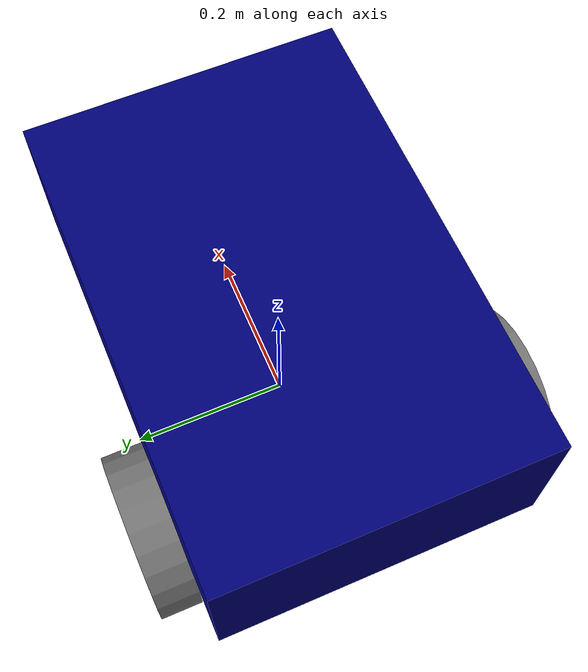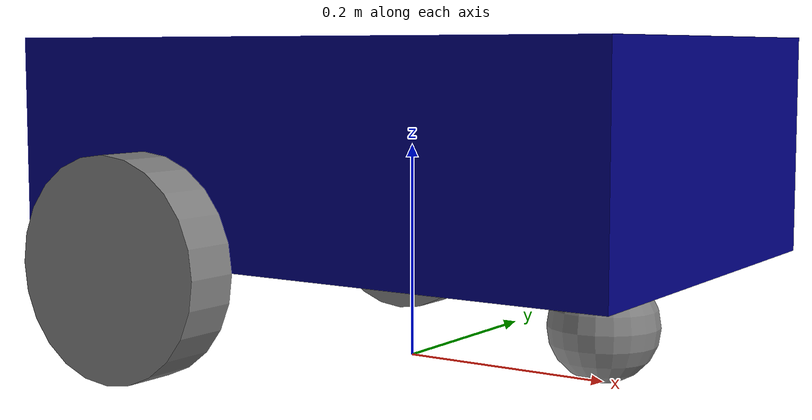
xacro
<?xml version="1.0"?>
<robot name="my_robot_magus" xmlns:xacro="http://www.ros.org/wiki/xacro">

    <xacro:property name="base_length" value="0.6" />
    <xacro:property name="base_width" value="0.4" />
    <xacro:property name="base_height" value="0.2" />
    <xacro:property name="wheel_radius" value="0.1" />
    <xacro:property name="wheel_length" value="0.05" />

    <material name="blue">
        <color rgba="0 0 0.5 1" />
    </material>

    <material name="grey">
        <color rgba="0.5 0.5 0.5 1" />
    </material>

    <link name="base_link">
        <visual>
            <geometry>
                <box size="${base_length} ${base_width} ${base_height}" />
            </geometry>
            <origin xyz="0 0 ${base_height / 2.0}" rpy="0 0 0" />
            <material name="blue" />
        </visual>
    </link>

    <link name="right_wheel_link">
        <visual>
            <geometry>
                <cylinder radius="${wheel_radius}" length="${wheel_length}" />
            </geometry>
            <origin xyz="0 0 0" rpy="${pi / 2.0} 0 0" />
            <material name="grey" />
        </visual>
    </link>

    <link name="left_wheel_link">
        <visual>
            <geometry>
                <cylinder radius="${wheel_radius}" length="${wheel_length}" />
            </geometry>
            <origin xyz="0 0 0" rpy="${pi / 2.0} 0 0" />
            <material name="grey" />
        </visual>
    </link>

    <link name="caster_wheel_link">
        <visual>
            <geometry>
                <sphere radius="${wheel_radius / 2.0}" />
            </geometry>
            <origin xyz="0 0 0" rpy="0 0 0" />
            <material name="grey" />
        </visual>
    </link>

    <link name="base_footprint_link" />

    <joint name="base_rigth_wheel_joint" type="continuous">
        <parent link="base_link" />
        <child link="right_wheel_link" />
        <origin xyz="${-base_length / 4.0} ${-base_width / 1.77} 0" rpy="0 0 0" />
        <axis xyz="0 1 0" />
    </joint>

    <joint name="base_left_wheel_joint" type="continuous">
        <parent link="base_link" />
        <child link="left_wheel_link" />
        <origin xyz="${-base_length / 4.0} ${base_width / 1.77} 0" rpy="0 0 0" />
        <axis xyz="0 1 0" />
    </joint>

    <joint name="base_caster_wheel_joint" type="fixed">
        <parent link="base_link" />
        <child link="caster_wheel_link" />
        <origin xyz="${base_length / 3.0} 0 ${-wheel_radius / 2.0}" rpy="0 0 0" />
    </joint>

    <joint name="base_joint" type="fixed">
        <parent link="base_footprint_link" />
        <child link="base_link" />
        <origin xyz="0 0 ${wheel_radius}" rpy="0 0 0" />
    </joint>

</robot>
